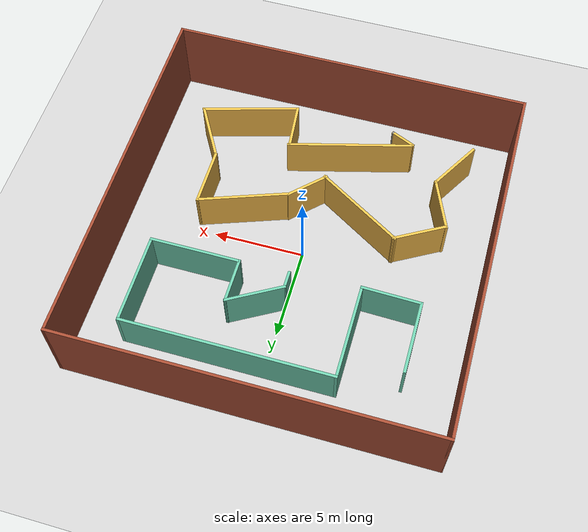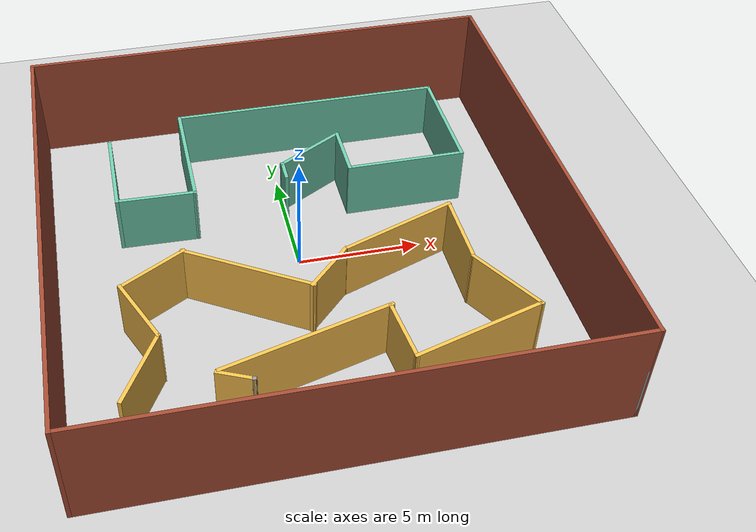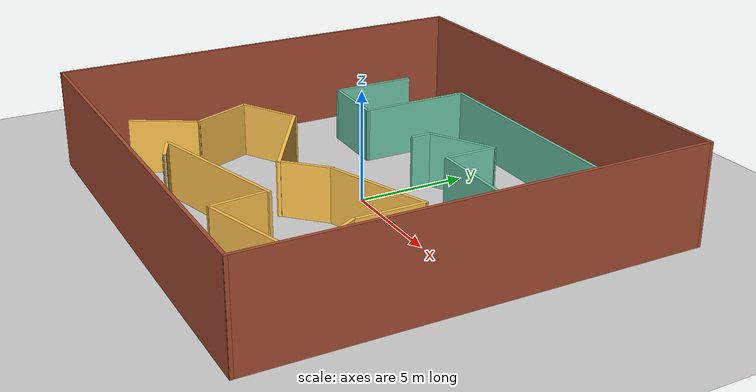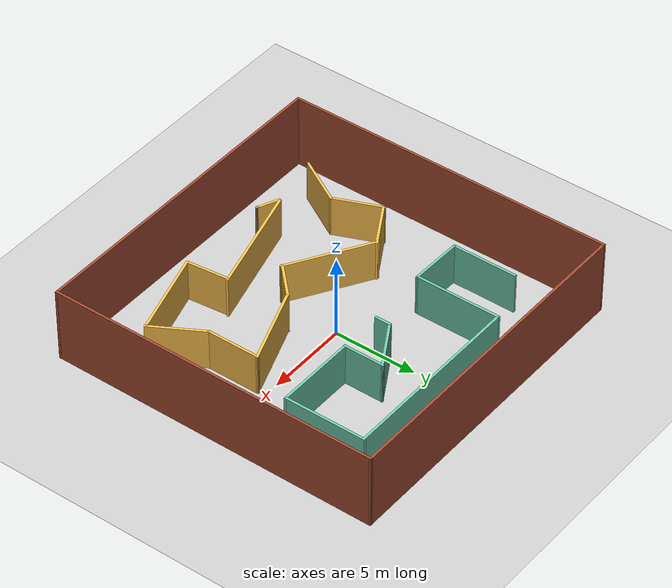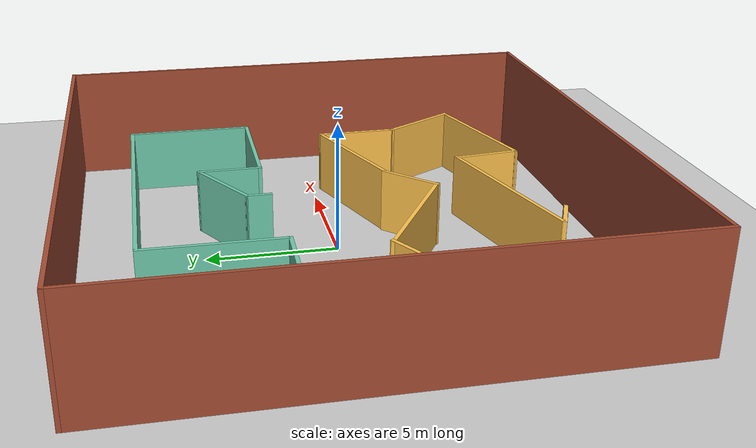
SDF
<sdf version="1.6">
 <world name="default">
  <light name="sun" type="directional">
   <pose>0 0 10 0 -0 0</pose>
   <diffuse>0.8 0.8 0.8 1</diffuse>
   <specular>0.2 0.2 0.2 1</specular>
   <attenuation>
    <range>1000</range>
    <constant>0.9</constant>
    <linear>0.01</linear>
    <quadratic>0.001</quadratic>
   </attenuation>
   <direction>-0.5 0.1 -0.9</direction>
  </light>
  <model name="ground_plane">
   <static>1</static>
   <link name="link">
    <collision name="collision">
     <geometry><plane><normal>0 0 1</normal><size>100 100</size></plane></geometry>
     <surface>
      <contact><collide_bitmask>65535</collide_bitmask></contact>
      <friction><ode><mu>100</mu><mu2>50</mu2></ode></friction>
     </surface>
    </collision>
    <visual name="visual">
     <cast_shadows>0</cast_shadows>
     <geometry><plane><normal>0 0 1</normal><size>100 100</size></plane></geometry>
     <material>
      <script><uri>file://media/materials/scripts/gazebo.material</uri><name>Gazebo/Grey</name></script>
     </material>
    </visual>
   </link>
  </model>
  <gravity>0 0 -9.8</gravity>
  <magnetic_field>6e-06 2.3e-05 -4.2e-05</magnetic_field>
  <atmosphere type="adiabatic"/>
  <physics name="default_physics" default="0" type="ode">
   <max_step_size>0.001</max_step_size>
   <real_time_factor>1</real_time_factor>
   <real_time_update_rate>1000</real_time_update_rate>
  </physics>
  <scene><ambient>0.4 0.4 0.4 1</ambient><background>0.7 0.7 0.7 1</background><shadows>1</shadows></scene>
  <spherical_coordinates>
   <surface_model>EARTH_WGS84</surface_model>
   <latitude_deg>0</latitude_deg>
   <longitude_deg>0</longitude_deg>
   <elevation>0</elevation>
   <heading_deg>0</heading_deg>
  </spherical_coordinates>
  <model name="Basic_Wall">
   <pose>0.140796 -0.164049 0 0 -0 0</pose>
   <link name="Wall_0">
    <collision name="Wall_0_Collision">
     <geometry><box><size>20.0102 0.15 4.5</size></box></geometry>
     <pose>0 0 2.25 0 -0 0</pose>
    </collision>
    <visual name="Wall_0_Visual">
     <pose>0 0 2.25 0 -0 0</pose>
     <geometry><box><size>20.0102 0.15 4.5</size></box></geometry>
     <material>
      <script><uri>file://media/materials/scripts/gazebo.material</uri><name>Gazebo/Bricks</name></script>
      <ambient>1 1 1 1</ambient>
     </material>
     <meta><layer>0</layer></meta>
    </visual>
    <pose>-0 9.925 0 0 -0 0</pose>
   </link>
   <link name="Wall_13">
    <collision name="Wall_13_Collision">
     <geometry><box><size>4 0.15 2.5</size></box></geometry>
     <pose>0 0 1.25 0 -0 0</pose>
    </collision>
    <visual name="Wall_13_Visual">
     <pose>0 0 1.25 0 -0 0</pose>
     <geometry><box><size>4 0.15 2.5</size></box></geometry>
     <material>
      <script><uri>file://media/materials/scripts/gazebo.material</uri><name>Gazebo/Grey</name></script>
      <ambient>0.435294 0.796078 0.67451 1</ambient>
     </material>
     <meta><layer>0</layer></meta>
    </visual>
    <pose>-7.10502 4.4915 0 0 -0 -1.5708</pose>
   </link>
   <link name="Wall_14">
    <collision name="Wall_14_Collision">
     <geometry><box><size>3.21309 0.15 2.5</size></box></geometry>
     <pose>0 0 1.25 0 -0 0</pose>
    </collision>
    <visual name="Wall_14_Visual">
     <pose>0 0 1.25 0 -0 0</pose>
     <geometry><box><size>3.21309 0.15 2.5</size></box></geometry>
     <material>
      <script><uri>file://media/materials/scripts/gazebo.material</uri><name>Gazebo/Grey</name></script>
      <ambient>0.435294 0.796078 0.67451 1</ambient>
     </material>
     <meta><layer>0</layer></meta>
    </visual>
    <pose>-5.50313 2.53112 0 0 -0 -0.023102</pose>
   </link>
   <link name="Wall_15">
    <collision name="Wall_15_Collision">
     <geometry><box><size>5.25 0.15 2.5</size></box></geometry>
     <pose>0 0 1.25 0 -0 0</pose>
    </collision>
    <visual name="Wall_15_Visual">
     <pose>0 0 1.25 0 -0 0</pose>
     <geometry><box><size>5.25 0.15 2.5</size></box></geometry>
     <material>
      <script><uri>file://media/materials/scripts/gazebo.material</uri><name>Gazebo/Grey</name></script>
      <ambient>0.435294 0.796078 0.67451 1</ambient>
     </material>
     <meta><layer>0</layer></meta>
    </visual>
    <pose>-3.97199 5.04575 0 0 -0 1.5708</pose>
   </link>
   <link name="Wall_16">
    <collision name="Wall_16_Collision">
     <geometry><box><size>11.5 0.15 2.5</size></box></geometry>
     <pose>0 0 1.25 0 -0 0</pose>
    </collision>
    <visual name="Wall_16_Visual">
     <pose>0 0 1.25 0 -0 0</pose>
     <geometry><box><size>11.5 0.15 2.5</size></box></geometry>
     <material>
      <script><uri>file://media/materials/scripts/gazebo.material</uri><name>Gazebo/Grey</name></script>
      <ambient>0.435294 0.796078 0.67451 1</ambient>
     </material>
     <meta><layer>0</layer></meta>
    </visual>
    <pose>1.70301 7.59574 0 0 -0 0</pose>
   </link>
   <link name="Wall_17">
    <collision name="Wall_17_Collision">
     <geometry><box><size>5 0.15 2.5</size></box></geometry>
     <pose>0 0 1.25 0 -0 0</pose>
    </collision>
    <visual name="Wall_17_Visual">
     <pose>0 0 1.25 0 -0 0</pose>
     <geometry><box><size>5 0.15 2.5</size></box></geometry>
     <material>
      <script><uri>file://media/materials/scripts/gazebo.material</uri><name>Gazebo/Grey</name></script>
      <ambient>0.435294 0.796078 0.67451 1</ambient>
     </material>
     <meta><layer>0</layer></meta>
    </visual>
    <pose>7.37801 5.17075 0 0 -0 -1.5708</pose>
   </link>
   <link name="Wall_18">
    <collision name="Wall_18_Collision">
     <geometry><box><size>5 0.15 2.5</size></box></geometry>
     <pose>0 0 1.25 0 -0 0</pose>
    </collision>
    <visual name="Wall_18_Visual">
     <pose>0 0 1.25 0 -0 0</pose>
     <geometry><box><size>5 0.15 2.5</size></box></geometry>
     <material>
      <script><uri>file://media/materials/scripts/gazebo.material</uri><name>Gazebo/Grey</name></script>
      <ambient>0.435294 0.796078 0.67451 1</ambient>
     </material>
     <meta><layer>0</layer></meta>
    </visual>
    <pose>4.95301 2.74574 0 0 -0 3.14159</pose>
   </link>
   <link name="Wall_19">
    <collision name="Wall_19_Collision">
     <geometry><box><size>2.5 0.15 2.5</size></box></geometry>
     <pose>0 0 1.25 0 -0 0</pose>
    </collision>
    <visual name="Wall_19_Visual">
     <pose>0 0 1.25 0 -0 0</pose>
     <geometry><box><size>2.5 0.15 2.5</size></box></geometry>
     <material>
      <script><uri>file://media/materials/scripts/gazebo.material</uri><name>Gazebo/Grey</name></script>
      <ambient>0.435294 0.796078 0.67451 1</ambient>
     </material>
     <meta><layer>0</layer></meta>
    </visual>
    <pose>2.52801 3.92075 0 0 -0 1.5708</pose>
   </link>
   <link name="Wall_2">
    <collision name="Wall_2_Collision">
     <geometry><box><size>20 0.15 4.5</size></box></geometry>
     <pose>0 0 2.25 0 -0 0</pose>
    </collision>
    <visual name="Wall_2_Visual">
     <pose>0 0 2.25 0 -0 0</pose>
     <geometry><box><size>20 0.15 4.5</size></box></geometry>
     <material>
      <script><uri>file://media/materials/scripts/gazebo.material</uri><name>Gazebo/Bricks</name></script>
      <ambient>1 1 1 1</ambient>
     </material>
     <meta><layer>0</layer></meta>
    </visual>
    <pose>9.92 -0 0 0 -0 -1.5718</pose>
   </link>
   <link name="Wall_20">
    <collision name="Wall_20_Collision">
     <geometry><box><size>3.25 0.15 2.5</size></box></geometry>
     <pose>0 0 1.25 0 -0 0</pose>
    </collision>
    <visual name="Wall_20_Visual">
     <pose>0 0 1.25 0 -0 0</pose>
     <geometry><box><size>3.25 0.15 2.5</size></box></geometry>
     <material>
      <script><uri>file://media/materials/scripts/gazebo.material</uri><name>Gazebo/Grey</name></script>
      <ambient>0.435294 0.796078 0.67451 1</ambient>
     </material>
     <meta><layer>0</layer></meta>
    </visual>
    <pose>1.18567 4.32074 0 0 -0 -2.61799</pose>
   </link>
   <link name="Wall_21">
    <collision name="Wall_21_Collision">
     <geometry><box><size>1 0.15 2.5</size></box></geometry>
     <pose>0 0 1.25 0 -0 0</pose>
    </collision>
    <visual name="Wall_21_Visual">
     <pose>0 0 1.25 0 -0 0</pose>
     <geometry><box><size>1 0.15 2.5</size></box></geometry>
     <material>
      <script><uri>file://media/materials/scripts/gazebo.material</uri><name>Gazebo/Grey</name></script>
      <ambient>0.435294 0.796078 0.67451 1</ambient>
     </material>
     <meta><layer>0</layer></meta>
    </visual>
    <pose>-0.15667 3.12074 0 0 -0 -1.5708</pose>
   </link>
   <link name="Wall_23">
    <collision name="Wall_23_Collision">
     <geometry><box><size>3.25 0.15 2.5</size></box></geometry>
     <pose>0 0 1.25 0 -0 0</pose>
    </collision>
    <visual name="Wall_23_Visual">
     <pose>0 0 1.25 0 -0 0</pose>
     <geometry><box><size>3.25 0.15 2.5</size></box></geometry>
     <material>
      <script><uri>file://media/materials/scripts/gazebo.material</uri><name>Gazebo/Grey</name></script>
      <ambient>1 0.764706 0.305882 1</ambient>
     </material>
     <meta><layer>0</layer></meta>
    </visual>
    <pose>-7.03759 -6.25106 0 0 -0 1.0472</pose>
   </link>
   <link name="Wall_24">
    <collision name="Wall_24_Collision">
     <geometry><box><size>3.06104 0.15 2.5</size></box></geometry>
     <pose>0 0 1.25 0 -0 0</pose>
    </collision>
    <visual name="Wall_24_Visual">
     <pose>0 0 1.25 0 -0 0</pose>
     <geometry><box><size>3.06104 0.15 2.5</size></box></geometry>
     <material>
      <script><uri>file://media/materials/scripts/gazebo.material</uri><name>Gazebo/Grey</name></script>
      <ambient>1 0.764706 0.305882 1</ambient>
     </material>
     <meta><layer>0</layer></meta>
    </visual>
    <pose>-6.82532 -3.56638 0 0 -0 1.96776</pose>
   </link>
   <link name="Wall_25">
    <collision name="Wall_25_Collision">
     <geometry><box><size>3 0.15 2.5</size></box></geometry>
     <pose>0 0 1.25 0 -0 0</pose>
    </collision>
    <visual name="Wall_25_Visual">
     <pose>0 0 1.25 0 -0 0</pose>
     <geometry><box><size>3 0.15 2.5</size></box></geometry>
     <material>
      <script><uri>file://media/materials/scripts/gazebo.material</uri><name>Gazebo/Grey</name></script>
      <ambient>1 0.764706 0.305882 1</ambient>
     </material>
     <meta><layer>0</layer></meta>
    </visual>
    <pose>-6.0832 -1.51154 0 0 -0 0.523599</pose>
   </link>
   <link name="Wall_26">
    <collision name="Wall_26_Collision">
     <geometry><box><size>5.50676 0.15 2.5</size></box></geometry>
     <pose>0 0 1.25 0 -0 0</pose>
    </collision>
    <visual name="Wall_26_Visual">
     <pose>0 0 1.25 0 -0 0</pose>
     <geometry><box><size>5.50676 0.15 2.5</size></box></geometry>
     <material>
      <script><uri>file://media/materials/scripts/gazebo.material</uri><name>Gazebo/Grey</name></script>
      <ambient>1 0.764706 0.305882 1</ambient>
     </material>
     <meta><layer>0</layer></meta>
    </visual>
    <pose>-2.63652 -2.19904 0 0 -0 -0.55002</pose>
   </link>
   <link name="Wall_27">
    <collision name="Wall_27_Collision">
     <geometry><box><size>2.5 0.15 2.5</size></box></geometry>
     <pose>0 0 1.25 0 -0 0</pose>
    </collision>
    <visual name="Wall_27_Visual">
     <pose>0 0 1.25 0 -0 0</pose>
     <geometry><box><size>2.5 0.15 2.5</size></box></geometry>
     <material>
      <script><uri>file://media/materials/scripts/gazebo.material</uri><name>Gazebo/Grey</name></script>
      <ambient>1 0.764706 0.305882 1</ambient>
     </material>
     <meta><layer>0</layer></meta>
    </visual>
    <pose>0.406932 -2.76819 0 0 -0 0.785398</pose>
   </link>
   <link name="Wall_28">
    <collision name="Wall_28_Collision">
     <geometry><box><size>4.99441 0.15 2.5</size></box></geometry>
     <pose>0 0 1.25 0 -0 0</pose>
    </collision>
    <visual name="Wall_28_Visual">
     <pose>0 0 1.25 0 -0 0</pose>
     <geometry><box><size>4.99441 0.15 2.5</size></box></geometry>
     <material>
      <script><uri>file://media/materials/scripts/gazebo.material</uri><name>Gazebo/Grey</name></script>
      <ambient>1 0.764706 0.305882 1</ambient>
     </material>
     <meta><layer>0</layer></meta>
    </visual>
    <pose>3.58372 -1.10629 0 0 -0 0.350208</pose>
   </link>
   <link name="Wall_29">
    <collision name="Wall_29_Collision">
     <geometry><box><size>3.25 0.15 2.5</size></box></geometry>
     <pose>0 0 1.25 0 -0 0</pose>
    </collision>
    <visual name="Wall_29_Visual">
     <pose>0 0 1.25 0 -0 0</pose>
     <geometry><box><size>3.25 0.15 2.5</size></box></geometry>
     <material>
      <script><uri>file://media/materials/scripts/gazebo.material</uri><name>Gazebo/Grey</name></script>
      <ambient>1 0.764706 0.305882 1</ambient>
     </material>
     <meta><layer>0</layer></meta>
    </visual>
    <pose>5.8589 -1.82525 0 0 -0 -1.5708</pose>
   </link>
   <link name="Wall_3">
    <collision name="Wall_3_Collision">
     <geometry><box><size>0.15 0.15 2.5</size></box></geometry>
     <pose>0 0 1.25 0 -0 0</pose>
    </collision>
    <visual name="Wall_3_Visual">
     <pose>0 0 1.25 0 -0 0</pose>
     <geometry><box><size>0.15 0.15 2.5</size></box></geometry>
     <material>
      <script><uri>file://media/materials/scripts/gazebo.material</uri><name>Gazebo/Grey</name></script>
      <ambient>1 1 1 1</ambient>
     </material>
     <meta><layer>0</layer></meta>
    </visual>
    <pose>9.91 -9.925 0 0 -0 0</pose>
   </link>
   <link name="Wall_30">
    <collision name="Wall_30_Collision">
     <geometry><box><size>3.43938 0.15 2.5</size></box></geometry>
     <pose>0 0 1.25 0 -0 0</pose>
    </collision>
    <visual name="Wall_30_Visual">
     <pose>0 0 1.25 0 -0 0</pose>
     <geometry><box><size>3.43938 0.15 2.5</size></box></geometry>
     <material>
      <script><uri>file://media/materials/scripts/gazebo.material</uri><name>Gazebo/Grey</name></script>
      <ambient>1 0.764706 0.305882 1</ambient>
     </material>
     <meta><layer>0</layer></meta>
    </visual>
    <pose>6.68277 -4.79872 0 0 -0 -1.04613</pose>
   </link>
   <link name="Wall_31">
    <collision name="Wall_31_Collision">
     <geometry><box><size>5.42427 0.15 2.5</size></box></geometry>
     <pose>0 0 1.25 0 -0 0</pose>
    </collision>
    <visual name="Wall_31_Visual">
     <pose>0 0 1.25 0 -0 0</pose>
     <geometry><box><size>5.42427 0.15 2.5</size></box></geometry>
     <material>
      <script><uri>file://media/materials/scripts/gazebo.material</uri><name>Gazebo/Grey</name></script>
      <ambient>1 0.764706 0.305882 1</ambient>
     </material>
     <meta><layer>0</layer></meta>
    </visual>
    <pose>4.90201 -6.95293 0 0 -0 -2.86082</pose>
   </link>
   <link name="Wall_32">
    <collision name="Wall_32_Collision">
     <geometry><box><size>2.63278 0.15 2.5</size></box></geometry>
     <pose>0 0 1.25 0 -0 0</pose>
    </collision>
    <visual name="Wall_32_Visual">
     <pose>0 0 1.25 0 -0 0</pose>
     <geometry><box><size>2.63278 0.15 2.5</size></box></geometry>
     <material>
      <script><uri>file://media/materials/scripts/gazebo.material</uri><name>Gazebo/Grey</name></script>
      <ambient>1 0.764706 0.305882 1</ambient>
     </material>
     <meta><layer>0</layer></meta>
    </visual>
    <pose>2.24166 -6.44874 0 0 -0 1.67286</pose>
   </link>
   <link name="Wall_33">
    <collision name="Wall_33_Collision">
     <geometry><box><size>7 0.15 2.5</size></box></geometry>
     <pose>0 0 1.25 0 -0 0</pose>
    </collision>
    <visual name="Wall_33_Visual">
     <pose>0 0 1.25 0 -0 0</pose>
     <geometry><box><size>7 0.15 2.5</size></box></geometry>
     <material>
      <script><uri>file://media/materials/scripts/gazebo.material</uri><name>Gazebo/Grey</name></script>
      <ambient>1 0.764706 0.305882 1</ambient>
     </material>
     <meta><layer>0</layer></meta>
    </visual>
    <pose>-1.12236 -6.02951 0 0 -0 -2.87979</pose>
   </link>
   <link name="Wall_34">
    <collision name="Wall_34_Collision">
     <geometry><box><size>1.47476 0.15 2.5</size></box></geometry>
     <pose>0 0 1.25 0 -0 0</pose>
    </collision>
    <visual name="Wall_34_Visual">
     <pose>0 0 1.25 0 -0 0</pose>
     <geometry><box><size>1.47476 0.15 2.5</size></box></geometry>
     <material>
      <script><uri>file://media/materials/scripts/gazebo.material</uri><name>Gazebo/Grey</name></script>
      <ambient>1 0.764706 0.305882 1</ambient>
     </material>
     <meta><layer>0</layer></meta>
    </visual>
    <pose>-3.89611 -7.25573 0 0 -0 -0.418201</pose>
   </link>
   <link name="Wall_35">
    <collision name="Wall_35_Collision">
     <geometry><box><size>0.15 0.15 2.5</size></box></geometry>
     <pose>0 0 1.25 0 -0 0</pose>
    </collision>
    <visual name="Wall_35_Visual">
     <pose>0 0 1.25 0 -0 0</pose>
     <geometry><box><size>0.15 0.15 2.5</size></box></geometry>
     <material>
      <script><uri>file://media/materials/scripts/gazebo.material</uri><name>Gazebo/Grey</name></script>
      <ambient>1 1 1 1</ambient>
     </material>
     <meta><layer>0</layer></meta>
    </visual>
    <pose>-3.29082 -7.52473 0 0 -0 0</pose>
   </link>
   <link name="Wall_5">
    <collision name="Wall_5_Collision">
     <geometry><box><size>20 0.15 4.5</size></box></geometry>
     <pose>0 0 2.25 0 -0 0</pose>
    </collision>
    <visual name="Wall_5_Visual">
     <pose>0 0 2.25 0 -0 0</pose>
     <geometry><box><size>20 0.15 4.5</size></box></geometry>
     <material>
      <script><uri>file://media/materials/scripts/gazebo.material</uri><name>Gazebo/Bricks</name></script>
      <ambient>1 1 1 1</ambient>
     </material>
     <meta><layer>0</layer></meta>
    </visual>
    <pose>-9.93 -0 0 0 -0 -1.5708</pose>
   </link>
   <link name="Wall_6">
    <collision name="Wall_6_Collision">
     <geometry><box><size>20 0.15 4.5</size></box></geometry>
     <pose>0 0 2.25 0 -0 0</pose>
    </collision>
    <visual name="Wall_6_Visual">
     <pose>0 0 2.25 0 -0 0</pose>
     <geometry><box><size>20 0.15 4.5</size></box></geometry>
     <material>
      <script><uri>file://media/materials/scripts/gazebo.material</uri><name>Gazebo/Bricks</name></script>
      <ambient>1 1 1 1</ambient>
     </material>
     <meta><layer>0</layer></meta>
    </visual>
    <pose>-0.005 -9.925 0 0 -0 0</pose>
   </link>
   <static>1</static>
  </model>
 </world>
</sdf>
